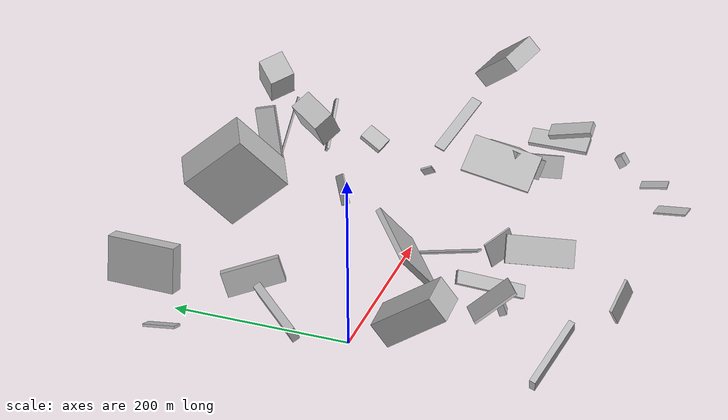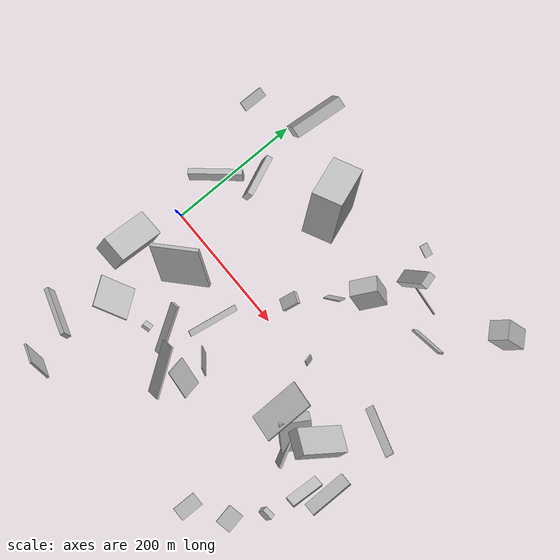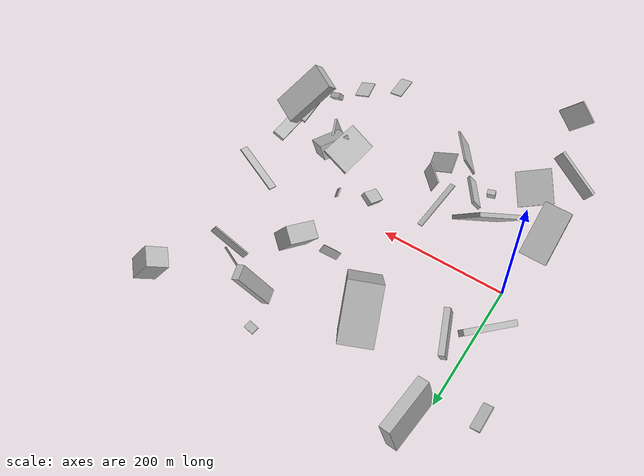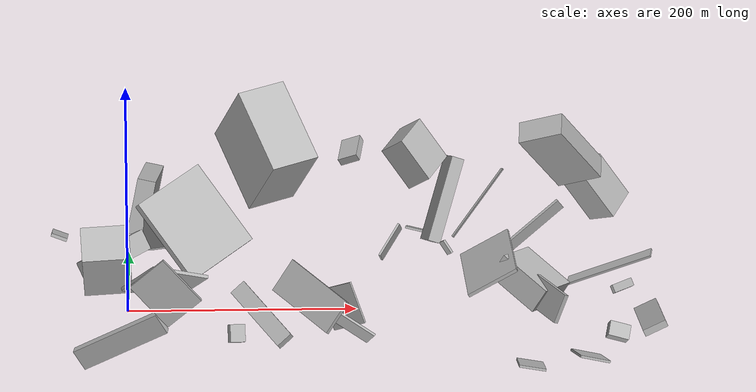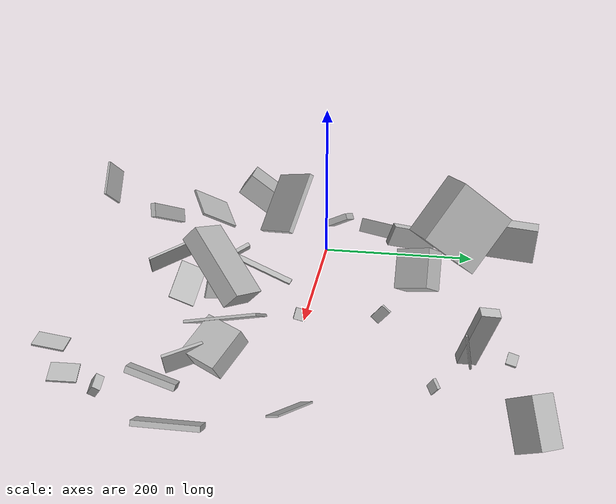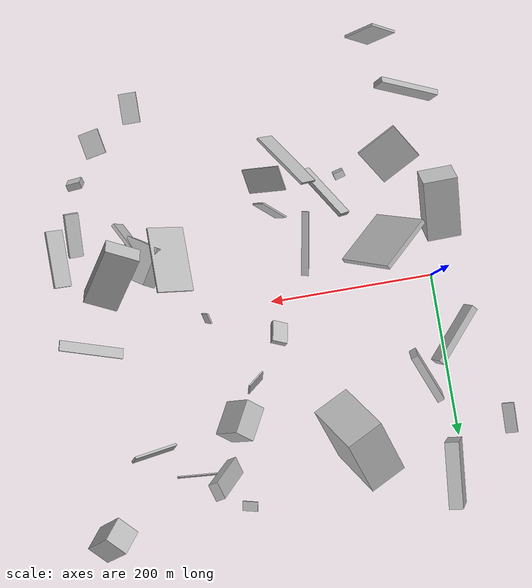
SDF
<sdf version="1.6">
 <world name="default">
  <scene>
   <sky><clouds><speed>12</speed></clouds></sky>
   <ambient>0.4 0.4 0.4 1</ambient>
   <background>0.7 0.7 0.7 1</background>
   <shadows>1</shadows>
  </scene>
  <gravity>0 0 -9.8066</gravity>
  <magnetic_field>6e-06 2.3e-05 -4.2e-05</magnetic_field>
  <physics default="0" name="default_physics" type="ode">
   <ode>
    <solver>
     <type>quick</type>
     <iters>10</iters>
     <sor>1.0</sor>
     <use_dynamic_moi_rescaling>0</use_dynamic_moi_rescaling>
    </solver>
    <constraints>
     <cfm>0</cfm>
     <erp>0.2</erp>
     <contact_max_correcting_vel>100</contact_max_correcting_vel>
     <contact_surface_layer>0.001</contact_surface_layer>
    </constraints>
   </ode>
   <max_step_size>0.004</max_step_size>
   <real_time_factor>1</real_time_factor>
   <real_time_update_rate>250</real_time_update_rate>
  </physics>
  <light name="sun" type="directional">
   <pose>0 0 10 0 0 0</pose>
   <diffuse>0.8 0.8 0.8 1</diffuse>
   <specular>0.2 0.2 0.2 1</specular>
   <attenuation>
    <range>1000</range>
    <constant>0.9</constant>
    <linear>0.01</linear>
    <quadratic>0.001</quadratic>
   </attenuation>
   <direction>-0.5 0.1 -0.9</direction>
  </light>
  <model name="building_1">
   <static>0</static>
   <pose>108.48105178229874 -121.35078832667527 24.96465919579911 -0.5119803100933457 -0.7326339153602883 -2.2455682749375607</pose>
   <link name="link">
    <gravity>0</gravity>
    <pose>0 0 7.5 0 0 0</pose>
    <collision name="collision"><geometry><box><size>5 80 15</size></box></geometry></collision>
    <visual name="visual">
     <cast_shadows>0</cast_shadows>
     <geometry><box><size>5 80 15</size></box></geometry>
     <material>
      <script>
       <uri>model://HANNAS_wall/materials/scripts</uri>
       <uri>model://HANNAS_wall/materials/textures</uri>
       <name>vrc/HANNAS_wall</name>
      </script>
     </material>
    </visual>
   </link>
  </model>
  <model name="building_2">
   <static>0</static>
   <pose>-16.818349136686898 -47.551099104374906 44.20231443529584 0.9355734841680023 -0.050651780268872855 0.023765394907261518</pose>
   <link name="link">
    <gravity>0</gravity>
    <pose>0 0 40.0 0 0 0</pose>
    <collision name="collision"><geometry><box><size>41 31 80</size></box></geometry></collision>
    <visual name="visual">
     <cast_shadows>0</cast_shadows>
     <geometry><box><size>41 31 80</size></box></geometry>
     <material>
      <script>
       <uri>model://HANNAS_wall/materials/scripts</uri>
       <uri>model://HANNAS_wall/materials/textures</uri>
       <name>vrc/HANNAS_wall</name>
      </script>
     </material>
    </visual>
   </link>
  </model>
  <model name="building_3">
   <static>0</static>
   <pose>-62.65253437408775 206.3183213022611 17.622086138937465 1.1780424422104767 -1.1881710616773 0.35870096171500093</pose>
   <link name="link">
    <gravity>0</gravity>
    <pose>0 0 18.5 0 0 0</pose>
    <collision name="collision"><geometry><box><size>3 15 37</size></box></geometry></collision>
    <visual name="visual">
     <cast_shadows>0</cast_shadows>
     <geometry><box><size>3 15 37</size></box></geometry>
     <material>
      <script>
       <uri>model://HANNAS_wall/materials/scripts</uri>
       <uri>model://HANNAS_wall/materials/textures</uri>
       <name>vrc/HANNAS_wall</name>
      </script>
     </material>
    </visual>
   </link>
  </model>
  <model name="building_4">
   <static>0</static>
   <pose>140.91465815476965 157.12852816569125 74.72889263945757 0.6978983924990487 0.1354913477313558 -2.6837709393602456</pose>
   <link name="link">
    <gravity>0</gravity>
    <pose>0 0 40.0 0 0 0</pose>
    <collision name="collision"><geometry><box><size>46 80 80</size></box></geometry></collision>
    <visual name="visual">
     <cast_shadows>0</cast_shadows>
     <geometry><box><size>46 80 80</size></box></geometry>
     <material>
      <script>
       <uri>model://HANNAS_wall/materials/scripts</uri>
       <uri>model://HANNAS_wall/materials/textures</uri>
       <name>vrc/HANNAS_wall</name>
      </script>
     </material>
    </visual>
   </link>
  </model>
  <model name="building_5">
   <static>0</static>
   <pose>422.93931257266115 15.290180147091228 28.01732760520254 -1.2934318253225685 -0.3914494977307174 -0.302959882611814</pose>
   <link name="link">
    <gravity>0</gravity>
    <pose>0 0 6.5 0 0 0</pose>
    <collision name="collision"><geometry><box><size>80 2 13</size></box></geometry></collision>
    <visual name="visual">
     <cast_shadows>0</cast_shadows>
     <geometry><box><size>80 2 13</size></box></geometry>
     <material>
      <script>
       <uri>model://HANNAS_wall/materials/scripts</uri>
       <uri>model://HANNAS_wall/materials/textures</uri>
       <name>vrc/HANNAS_wall</name>
      </script>
     </material>
    </visual>
   </link>
  </model>
  <model name="building_6">
   <static>0</static>
   <pose>249.1799703316012 116.34180788772447 100.50752088090393 1.2178665451641169 0.5174874931709069 2.474279190227879</pose>
   <link name="link">
    <gravity>0</gravity>
    <pose>0 0 20.5 0 0 0</pose>
    <collision name="collision"><geometry><box><size>25 43 41</size></box></geometry></collision>
    <visual name="visual">
     <cast_shadows>0</cast_shadows>
     <geometry><box><size>25 43 41</size></box></geometry>
     <material>
      <script>
       <uri>model://HANNAS_wall/materials/scripts</uri>
       <uri>model://HANNAS_wall/materials/textures</uri>
       <name>vrc/HANNAS_wall</name>
      </script>
     </material>
    </visual>
   </link>
  </model>
  <model name="building_7">
   <static>0</static>
   <pose>285.0606498221101 211.7518007482463 44.90655966258977 1.089782626547907 -1.1726129210351188 0.7305615782309609</pose>
   <link name="link">
    <gravity>0</gravity>
    <pose>0 0 11.0 0 0 0</pose>
    <collision name="collision"><geometry><box><size>80 12 22</size></box></geometry></collision>
    <visual name="visual">
     <cast_shadows>0</cast_shadows>
     <geometry><box><size>80 12 22</size></box></geometry>
     <material>
      <script>
       <uri>model://HANNAS_wall/materials/scripts</uri>
       <uri>model://HANNAS_wall/materials/textures</uri>
       <name>vrc/HANNAS_wall</name>
      </script>
     </material>
    </visual>
   </link>
  </model>
  <model name="building_8">
   <static>0</static>
   <pose>24.089689136275734 239.95271538943103 38.204481463108635 1.3728984052406077 -0.05195922865702536 -1.6670374165961679</pose>
   <link name="link">
    <gravity>0</gravity>
    <pose>0 0 8.5 0 0 0</pose>
    <collision name="collision"><geometry><box><size>80 52 17</size></box></geometry></collision>
    <visual name="visual">
     <cast_shadows>0</cast_shadows>
     <geometry><box><size>80 52 17</size></box></geometry>
     <material>
      <script>
       <uri>model://HANNAS_wall/materials/scripts</uri>
       <uri>model://HANNAS_wall/materials/textures</uri>
       <name>vrc/HANNAS_wall</name>
      </script>
     </material>
    </visual>
   </link>
  </model>
  <model name="building_9">
   <static>0</static>
   <pose>368.392347634286 -122.37748190461338 31.97316861583112 1.381542497618291 -0.30108511649328057 -2.595941740162081</pose>
   <link name="link">
    <gravity>0</gravity>
    <pose>0 0 40.0 0 0 0</pose>
    <collision name="collision"><geometry><box><size>4 26 80</size></box></geometry></collision>
    <visual name="visual">
     <cast_shadows>0</cast_shadows>
     <geometry><box><size>4 26 80</size></box></geometry>
     <material>
      <script>
       <uri>model://HANNAS_wall/materials/scripts</uri>
       <uri>model://HANNAS_wall/materials/textures</uri>
       <name>vrc/HANNAS_wall</name>
      </script>
     </material>
    </visual>
   </link>
  </model>
  <model name="building_10">
   <static>0</static>
   <pose>170.7218695755517 -98.78741989804368 27.259350819335285 1.2130349657930188 -0.10423500734113873 0.9305749836463074</pose>
   <link name="link">
    <gravity>0</gravity>
    <pose>0 0 17.0 0 0 0</pose>
    <collision name="collision"><geometry><box><size>2 37 34</size></box></geometry></collision>
    <visual name="visual">
     <cast_shadows>0</cast_shadows>
     <geometry><box><size>2 37 34</size></box></geometry>
     <material>
      <script>
       <uri>model://HANNAS_wall/materials/scripts</uri>
       <uri>model://HANNAS_wall/materials/textures</uri>
       <name>vrc/HANNAS_wall</name>
      </script>
     </material>
    </visual>
   </link>
  </model>
  <model name="building_11">
   <static>0</static>
   <pose>25.76877297967303 118.21000939835389 40.756690333121156 -1.735341083613834 -0.28651310084070347 -1.168528773716685</pose>
   <link name="link">
    <gravity>0</gravity>
    <pose>0 0 4.5 0 0 0</pose>
    <collision name="collision"><geometry><box><size>65 29 9</size></box></geometry></collision>
    <visual name="visual">
     <cast_shadows>0</cast_shadows>
     <geometry><box><size>65 29 9</size></box></geometry>
     <material>
      <script>
       <uri>model://HANNAS_wall/materials/scripts</uri>
       <uri>model://HANNAS_wall/materials/textures</uri>
       <name>vrc/HANNAS_wall</name>
      </script>
     </material>
    </visual>
   </link>
  </model>
  <model name="building_12">
   <static>0</static>
   <pose>-5.217741525123656 -229.64571591527863 38.21706590446431 1.0360992265866142 -1.0131753225739255 -2.829538909658657</pose>
   <link name="link">
    <gravity>0</gravity>
    <pose>0 0 3.5 0 0 0</pose>
    <collision name="collision"><geometry><box><size>19 80 7</size></box></geometry></collision>
    <visual name="visual">
     <cast_shadows>0</cast_shadows>
     <geometry><box><size>19 80 7</size></box></geometry>
     <material>
      <script>
       <uri>model://HANNAS_wall/materials/scripts</uri>
       <uri>model://HANNAS_wall/materials/textures</uri>
       <name>vrc/HANNAS_wall</name>
      </script>
     </material>
    </visual>
   </link>
  </model>
  <model name="building_13">
   <static>0</static>
   <pose>320.3488867630425 191.09671643316116 45.07715533390421 -0.697079048131721 -0.9704982685298267 -0.19173168605465116</pose>
   <link name="link">
    <gravity>0</gravity>
    <pose>0 0 1.0 0 0 0</pose>
    <collision name="collision"><geometry><box><size>80 2 2</size></box></geometry></collision>
    <visual name="visual">
     <cast_shadows>0</cast_shadows>
     <geometry><box><size>80 2 2</size></box></geometry>
     <material>
      <script>
       <uri>model://HANNAS_wall/materials/scripts</uri>
       <uri>model://HANNAS_wall/materials/textures</uri>
       <name>vrc/HANNAS_wall</name>
      </script>
     </material>
    </visual>
   </link>
  </model>
  <model name="building_14">
   <static>0</static>
   <pose>371.55232328385637 -60.32645276945851 147.16379203174026 0.38118271611178994 -0.6804380490125936 -2.2529771565342402</pose>
   <link name="link">
    <gravity>0</gravity>
    <pose>0 0 10.0 0 0 0</pose>
    <collision name="collision"><geometry><box><size>80 40 20</size></box></geometry></collision>
    <visual name="visual">
     <cast_shadows>0</cast_shadows>
     <geometry><box><size>80 40 20</size></box></geometry>
     <material>
      <script>
       <uri>model://HANNAS_wall/materials/scripts</uri>
       <uri>model://HANNAS_wall/materials/textures</uri>
       <name>vrc/HANNAS_wall</name>
      </script>
     </material>
    </visual>
   </link>
  </model>
  <model name="building_15">
   <static>0</static>
   <pose>371.8894902974479 160.14602332450968 28.728420887794364 -0.4211519436073198 0.6876499989897348 -3.0192916305486848</pose>
   <link name="link">
    <gravity>0</gravity>
    <pose>0 0 5.5 0 0 0</pose>
    <collision name="collision"><geometry><box><size>62 3 11</size></box></geometry></collision>
    <visual name="visual">
     <cast_shadows>0</cast_shadows>
     <geometry><box><size>62 3 11</size></box></geometry>
     <material>
      <script>
       <uri>model://HANNAS_wall/materials/scripts</uri>
       <uri>model://HANNAS_wall/materials/textures</uri>
       <name>vrc/HANNAS_wall</name>
      </script>
     </material>
    </visual>
   </link>
  </model>
  <model name="building_16">
   <static>0</static>
   <pose>153.65558630949835 -23.93580182449622 25.92853819468929 0.5767332994061763 -1.170956584303913 0.7871214097107003</pose>
   <link name="link">
    <gravity>0</gravity>
    <pose>0 0 40.0 0 0 0</pose>
    <collision name="collision"><geometry><box><size>2 9 80</size></box></geometry></collision>
    <visual name="visual">
     <cast_shadows>0</cast_shadows>
     <geometry><box><size>2 9 80</size></box></geometry>
     <material>
      <script>
       <uri>model://HANNAS_wall/materials/scripts</uri>
       <uri>model://HANNAS_wall/materials/textures</uri>
       <name>vrc/HANNAS_wall</name>
      </script>
     </material>
    </visual>
   </link>
  </model>
  <model name="building_17">
   <static>0</static>
   <pose>225.50673944071775 86.86842756240121 22.815952786089007 -0.4093182499503288 -0.629771970057424 -1.844971594021441</pose>
   <link name="link">
    <gravity>0</gravity>
    <pose>0 0 17.0 0 0 0</pose>
    <collision name="collision"><geometry><box><size>12 2 34</size></box></geometry></collision>
    <visual name="visual">
     <cast_shadows>0</cast_shadows>
     <geometry><box><size>12 2 34</size></box></geometry>
     <material>
      <script>
       <uri>model://HANNAS_wall/materials/scripts</uri>
       <uri>model://HANNAS_wall/materials/textures</uri>
       <name>vrc/HANNAS_wall</name>
      </script>
     </material>
    </visual>
   </link>
  </model>
  <model name="building_18">
   <static>0</static>
   <pose>194.44200005760842 29.907411861054047 126.9695570682089 0.6312013702292504 -0.9565914150586803 -2.493035578958651</pose>
   <link name="link">
    <gravity>0</gravity>
    <pose>0 0 13.0 0 0 0</pose>
    <collision name="collision"><geometry><box><size>7 18 26</size></box></geometry></collision>
    <visual name="visual">
     <cast_shadows>0</cast_shadows>
     <geometry><box><size>7 18 26</size></box></geometry>
     <material>
      <script>
       <uri>model://HANNAS_wall/materials/scripts</uri>
       <uri>model://HANNAS_wall/materials/textures</uri>
       <name>vrc/HANNAS_wall</name>
      </script>
     </material>
    </visual>
   </link>
  </model>
  <model name="building_19">
   <static>0</static>
   <pose>-38.628522859501004 47.23278806572404 23.781318188760753 1.39845951971113 0.43779550756251 2.344491161538312</pose>
   <link name="link">
    <gravity>0</gravity>
    <pose>0 0 40.0 0 0 0</pose>
    <collision name="collision"><geometry><box><size>9 19 80</size></box></geometry></collision>
    <visual name="visual">
     <cast_shadows>0</cast_shadows>
     <geometry><box><size>9 19 80</size></box></geometry>
     <material>
      <script>
       <uri>model://HANNAS_wall/materials/scripts</uri>
       <uri>model://HANNAS_wall/materials/textures</uri>
       <name>vrc/HANNAS_wall</name>
      </script>
     </material>
    </visual>
   </link>
  </model>
  <model name="building_20">
   <static>0</static>
   <pose>438.5570411347975 -94.93339210036447 11.769715483181148 -0.0018477272797487035 1.1271420328205872 0.004444459030068379</pose>
   <link name="link">
    <gravity>0</gravity>
    <pose>0 0 10.5 0 0 0</pose>
    <collision name="collision"><geometry><box><size>6 70 21</size></box></geometry></collision>
    <visual name="visual">
     <cast_shadows>0</cast_shadows>
     <geometry><box><size>6 70 21</size></box></geometry>
     <material>
      <script>
       <uri>model://HANNAS_wall/materials/scripts</uri>
       <uri>model://HANNAS_wall/materials/textures</uri>
       <name>vrc/HANNAS_wall</name>
      </script>
     </material>
    </visual>
   </link>
  </model>
  <model name="building_21">
   <static>0</static>
   <pose>409.8274149531087 -184.04056359409194 23.317433456419707 0.3355370734908399 0.5603587039532063 1.8022967878593523</pose>
   <link name="link">
    <gravity>0</gravity>
    <pose>0 0 6.5 0 0 0</pose>
    <collision name="collision"><geometry><box><size>9 18 13</size></box></geometry></collision>
    <visual name="visual">
     <cast_shadows>0</cast_shadows>
     <geometry><box><size>9 18 13</size></box></geometry>
     <material>
      <script>
       <uri>model://HANNAS_wall/materials/scripts</uri>
       <uri>model://HANNAS_wall/materials/textures</uri>
       <name>vrc/HANNAS_wall</name>
      </script>
     </material>
    </visual>
   </link>
  </model>
  <model name="building_22">
   <static>0</static>
   <pose>257.37012043849097 243.95025460284086 9.973650902749577 1.767818442269074 0.19525157748519179 1.3936930987304463</pose>
   <link name="link">
    <gravity>0</gravity>
    <pose>0 0 9.5 0 0 0</pose>
    <collision name="collision"><geometry><box><size>12 2 19</size></box></geometry></collision>
    <visual name="visual">
     <cast_shadows>0</cast_shadows>
     <geometry><box><size>12 2 19</size></box></geometry>
     <material>
      <script>
       <uri>model://HANNAS_wall/materials/scripts</uri>
       <uri>model://HANNAS_wall/materials/textures</uri>
       <name>vrc/HANNAS_wall</name>
      </script>
     </material>
    </visual>
   </link>
  </model>
  <model name="building_23">
   <static>0</static>
   <pose>280.3252042404421 2.317870416098562 54.931553508208964 -2.232529196826693 0.9571541128748603 -0.3348608352794058</pose>
   <link name="link">
    <gravity>0</gravity>
    <pose>0 0 6.5 0 0 0</pose>
    <collision name="collision"><geometry><box><size>13 2 13</size></box></geometry></collision>
    <visual name="visual">
     <cast_shadows>0</cast_shadows>
     <geometry><box><size>13 2 13</size></box></geometry>
     <material>
      <script>
       <uri>model://HANNAS_wall/materials/scripts</uri>
       <uri>model://HANNAS_wall/materials/textures</uri>
       <name>vrc/HANNAS_wall</name>
      </script>
     </material>
    </visual>
   </link>
  </model>
  <model name="building_24">
   <static>0</static>
   <pose>412.4893237230863 -117.30518943455702 47.56178179688935 1.1879305315191235 0.2905270171178847 1.499901168107664</pose>
   <link name="link">
    <gravity>0</gravity>
    <pose>0 0 8.5 0 0 0</pose>
    <collision name="collision"><geometry><box><size>53 7 17</size></box></geometry></collision>
    <visual name="visual">
     <cast_shadows>0</cast_shadows>
     <geometry><box><size>53 7 17</size></box></geometry>
     <material>
      <script>
       <uri>model://HANNAS_wall/materials/scripts</uri>
       <uri>model://HANNAS_wall/materials/textures</uri>
       <name>vrc/HANNAS_wall</name>
      </script>
     </material>
    </visual>
   </link>
  </model>
  <model name="building_25">
   <static>0</static>
   <pose>47.97524916268362 -287.06074092800145 78.8559838413185 0.7176321866921179 0.1634315230539635 -1.7062742281864078</pose>
   <link name="link">
    <gravity>0</gravity>
    <pose>0 0 23.0 0 0 0</pose>
    <collision name="collision"><geometry><box><size>3 37 46</size></box></geometry></collision>
    <visual name="visual">
     <cast_shadows>0</cast_shadows>
     <geometry><box><size>3 37 46</size></box></geometry>
     <material>
      <script>
       <uri>model://HANNAS_wall/materials/scripts</uri>
       <uri>model://HANNAS_wall/materials/textures</uri>
       <name>vrc/HANNAS_wall</name>
      </script>
     </material>
    </visual>
   </link>
  </model>
  <model name="building_26">
   <static>0</static>
   <pose>92.47114971937677 -142.55208635730324 12.167047727970935 0.05626989754977351 0.32472575984352475 1.8410786907990424</pose>
   <link name="link">
    <gravity>0</gravity>
    <pose>0 0 7.5 0 0 0</pose>
    <collision name="collision"><geometry><box><size>8 13 15</size></box></geometry></collision>
    <visual name="visual">
     <cast_shadows>0</cast_shadows>
     <geometry><box><size>8 13 15</size></box></geometry>
     <material>
      <script>
       <uri>model://HANNAS_wall/materials/scripts</uri>
       <uri>model://HANNAS_wall/materials/textures</uri>
       <name>vrc/HANNAS_wall</name>
      </script>
     </material>
    </visual>
   </link>
  </model>
  <model name="building_27">
   <static>0</static>
   <pose>309.7249015477814 -28.894036785034245 66.19474696391921 1.9195900115673505 1.0112980754410046 0.3162888603437956</pose>
   <link name="link">
    <gravity>0</gravity>
    <pose>0 0 40.0 0 0 0</pose>
    <collision name="collision"><geometry><box><size>3 47 80</size></box></geometry></collision>
    <visual name="visual">
     <cast_shadows>0</cast_shadows>
     <geometry><box><size>3 47 80</size></box></geometry>
     <material>
      <script>
       <uri>model://HANNAS_wall/materials/scripts</uri>
       <uri>model://HANNAS_wall/materials/textures</uri>
       <name>vrc/HANNAS_wall</name>
      </script>
     </material>
    </visual>
   </link>
  </model>
  <model name="building_28">
   <static>0</static>
   <pose>18.392356209736423 -130.25388753425872 52.45229540138689 -0.4802421568579381 0.9377056001608509 -1.4956680704430012</pose>
   <link name="link">
    <gravity>0</gravity>
    <pose>0 0 26.5 0 0 0</pose>
    <collision name="collision"><geometry><box><size>3 53 53</size></box></geometry></collision>
    <visual name="visual">
     <cast_shadows>0</cast_shadows>
     <geometry><box><size>3 53 53</size></box></geometry>
     <material>
      <script>
       <uri>model://HANNAS_wall/materials/scripts</uri>
       <uri>model://HANNAS_wall/materials/textures</uri>
       <name>vrc/HANNAS_wall</name>
      </script>
     </material>
    </visual>
   </link>
  </model>
  <model name="building_29">
   <static>0</static>
   <pose>81.3704438755083 -55.109956100574806 60.08560127929753 -0.613989297944456 -0.32208217665988137 0.7432556718025035</pose>
   <link name="link">
    <gravity>0</gravity>
    <pose>0 0 40.0 0 0 0</pose>
    <collision name="collision"><geometry><box><size>74 6 80</size></box></geometry></collision>
    <visual name="visual">
     <cast_shadows>0</cast_shadows>
     <geometry><box><size>74 6 80</size></box></geometry>
     <material>
      <script>
       <uri>model://HANNAS_wall/materials/scripts</uri>
       <uri>model://HANNAS_wall/materials/textures</uri>
       <name>vrc/HANNAS_wall</name>
      </script>
     </material>
    </visual>
   </link>
  </model>
  <model name="building_30">
   <static>0</static>
   <pose>358.2021761034849 -52.113316581593004 43.390731279478786 1.4373361710461217 -1.0056389560594177 -0.4305123220455602</pose>
   <link name="link">
    <gravity>0</gravity>
    <pose>0 0 23.5 0 0 0</pose>
    <collision name="collision"><geometry><box><size>23 49 47</size></box></geometry></collision>
    <visual name="visual">
     <cast_shadows>0</cast_shadows>
     <geometry><box><size>23 49 47</size></box></geometry>
     <material>
      <script>
       <uri>model://HANNAS_wall/materials/scripts</uri>
       <uri>model://HANNAS_wall/materials/textures</uri>
       <name>vrc/HANNAS_wall</name>
      </script>
     </material>
    </visual>
   </link>
  </model>
  <model name="building_31">
   <static>0</static>
   <pose>186.25273286243416 -161.22213347996245 37.251077047818 2.255055225275044 0.8027802202594304 -2.4343906016873573</pose>
   <link name="link">
    <gravity>0</gravity>
    <pose>0 0 16.0 0 0 0</pose>
    <collision name="collision"><geometry><box><size>2 52 32</size></box></geometry></collision>
    <visual name="visual">
     <cast_shadows>0</cast_shadows>
     <geometry><box><size>2 52 32</size></box></geometry>
     <material>
      <script>
       <uri>model://HANNAS_wall/materials/scripts</uri>
       <uri>model://HANNAS_wall/materials/textures</uri>
       <name>vrc/HANNAS_wall</name>
      </script>
     </material>
    </visual>
   </link>
  </model>
  <model name="building_32">
   <static>0</static>
   <pose>425.5647818790635 240.3177237683961 35.95836869419435 0.4477303273785924 -0.9210288197486654 -2.7652396256698104</pose>
   <link name="link">
    <gravity>0</gravity>
    <pose>0 0 16.0 0 0 0</pose>
    <collision name="collision"><geometry><box><size>51 30 32</size></box></geometry></collision>
    <visual name="visual">
     <cast_shadows>0</cast_shadows>
     <geometry><box><size>51 30 32</size></box></geometry>
     <material>
      <script>
       <uri>model://HANNAS_wall/materials/scripts</uri>
       <uri>model://HANNAS_wall/materials/textures</uri>
       <name>vrc/HANNAS_wall</name>
      </script>
     </material>
    </visual>
   </link>
  </model>
  <model name="building_33">
   <static>0</static>
   <pose>145.14000454613503 -164.81268233929327 44.43080178965681 0.5503407012663419 -0.2492608035523598 2.1574064289584256</pose>
   <link name="link">
    <gravity>0</gravity>
    <pose>0 0 15.5 0 0 0</pose>
    <collision name="collision"><geometry><box><size>80 3 31</size></box></geometry></collision>
    <visual name="visual">
     <cast_shadows>0</cast_shadows>
     <geometry><box><size>80 3 31</size></box></geometry>
     <material>
      <script>
       <uri>model://HANNAS_wall/materials/scripts</uri>
       <uri>model://HANNAS_wall/materials/textures</uri>
       <name>vrc/HANNAS_wall</name>
      </script>
     </material>
    </visual>
   </link>
  </model>
  <model name="building_34">
   <static>0</static>
   <pose>330.9166184538442 -280.1184846204197 26.96722251008231 -1.6958944673654897 0.16212655283413097 -0.03287361587221883</pose>
   <link name="link">
    <gravity>0</gravity>
    <pose>0 0 18.5 0 0 0</pose>
    <collision name="collision"><geometry><box><size>22 2 37</size></box></geometry></collision>
    <visual name="visual">
     <cast_shadows>0</cast_shadows>
     <geometry><box><size>22 2 37</size></box></geometry>
     <material>
      <script>
       <uri>model://HANNAS_wall/materials/scripts</uri>
       <uri>model://HANNAS_wall/materials/textures</uri>
       <name>vrc/HANNAS_wall</name>
      </script>
     </material>
    </visual>
   </link>
  </model>
  <model name="building_35">
   <static>0</static>
   <pose>370.9092338249125 -228.7137241740945 24.361078034097943 1.817295621242228 0.09343679444960964 1.7512665992312684</pose>
   <link name="link">
    <gravity>0</gravity>
    <pose>0 0 13.0 0 0 0</pose>
    <collision name="collision"><geometry><box><size>31 2 26</size></box></geometry></collision>
    <visual name="visual">
     <cast_shadows>0</cast_shadows>
     <geometry><box><size>31 2 26</size></box></geometry>
     <material>
      <script>
       <uri>model://HANNAS_wall/materials/scripts</uri>
       <uri>model://HANNAS_wall/materials/textures</uri>
       <name>vrc/HANNAS_wall</name>
      </script>
     </material>
    </visual>
   </link>
  </model>
 </world>
</sdf>
